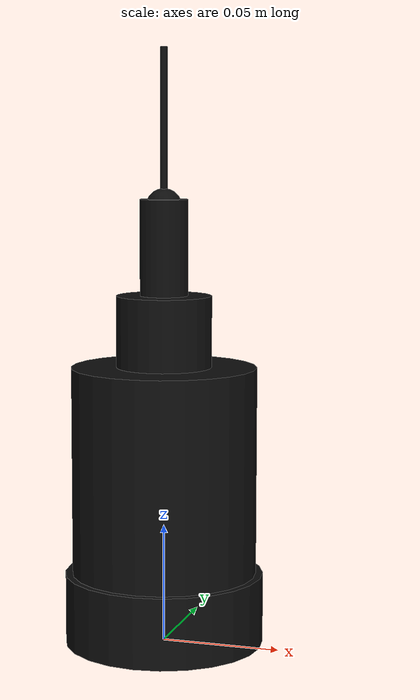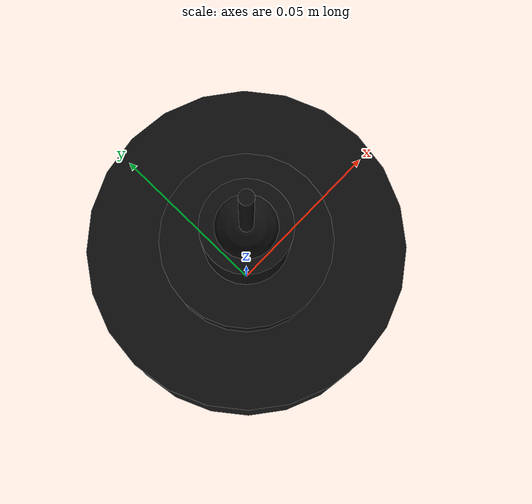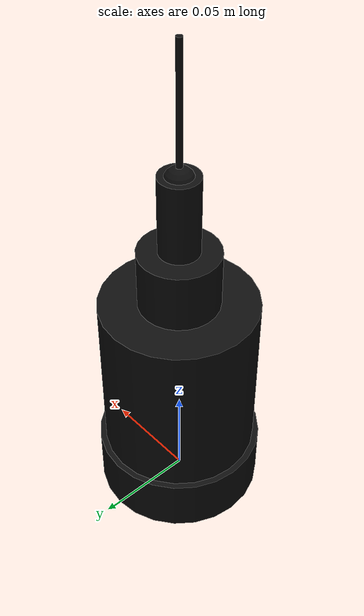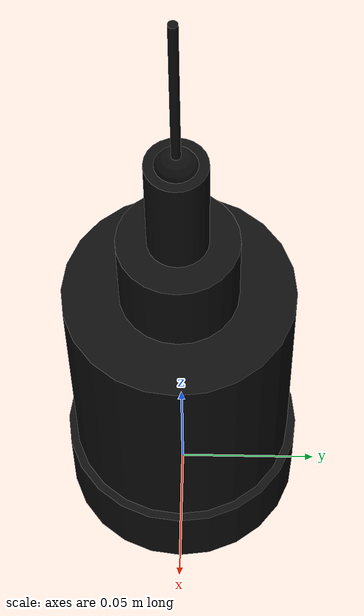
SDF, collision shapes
<?xml version="1.0" ?>
<sdf version="1.9">
  <model name="arc_sensor">

    <static>true</static>

    <link name="sensor_link">

      <inertial>
        <mass>0.35</mass>
        <pose>0 0 0.075 0 0 0</pose>
        <inertia>
          <ixx>0.0012</ixx>
          <iyy>0.0012</iyy>
          <izz>0.0004</izz>
          <ixy>0</ixy>
          <ixz>0</ixz>
          <iyz>0</iyz>
        </inertia>
      </inertial>

      <!-- VISUAL: high-fidelity revolved bellows body (dome + neck +    -->
      <!-- conical shoulder + ribbed housing + cylindrical base), built  -->
      <!-- from the dimensioned profile traced off the drawing.          -->
      <visual name="visual_body">
        <pose>0 0 0 0 0 0</pose>
        <geometry>
          <mesh>
            <uri>meshes/sensor_body.obj</uri>
            <scale>1 1 1</scale>
          </mesh>
        </geometry>
        <material>
          <ambient>0.02 0.02 0.02 1</ambient>
          <diffuse>0.05 0.05 0.05 1</diffuse>
          <specular>0.15 0.15 0.15 1</specular>
          <emissive>0 0 0 1</emissive>
        </material>
      </visual>

      <!-- Flexible whip antenna above the dome, drawn as a zig-zag
           (spring/whip) symbol. Modeled as a thin cylinder for
           collision/visual simplicity. -->
      <visual name="visual_whip_antenna">
        <pose>0 0 0.220 0 0 0</pose>
        <geometry>
          <cylinder>
            <radius>0.0015</radius>
            <length>0.060</length>
          </cylinder>
        </geometry>
        <material>
          <ambient>0.3 0.3 0.3 1</ambient>
          <diffuse>0.4 0.4 0.4 1</diffuse>
          <specular>0.5 0.5 0.5 1</specular>
        </material>
      </visual>

      <visual name="visual_slot_left">
        <pose>-0.018 0.0415 0.018 0 0 0</pose>
        <geometry>
          <box>
            <size>0.006 0.002 0.022</size>
          </box>
        </geometry>
        <material>
          <ambient>0.01 0.01 0.01 1</ambient>
          <diffuse>0.01 0.01 0.01 1</diffuse>
        </material>
      </visual>

      <visual name="visual_slot_right">
        <pose>0.018 0.0415 0.018 0 0 0</pose>
        <geometry>
          <box>
            <size>0.006 0.002 0.022</size>
          </box>
        </geometry>
        <material>
          <ambient>0.01 0.01 0.01 1</ambient>
          <diffuse>0.01 0.01 0.01 1</diffuse>
        </material>
      </visual>

      <!-- COLLISION: simplified compound primitives approximating the   -->
      <!-- visual envelope (cylindrical base + tapered bellows body as a -->
      <!-- conical frustum + dome cap + thin antenna stalk), for         -->
      <!-- efficient physics-engine collision checking.                  -->

      <!-- Base cylinder (the part planted/buried in the ground): Ø84mm -->
      <collision name="collision_base">
        <pose>0 0 0.015 0 0 0</pose>
        <geometry>
          <cylinder>
            <radius>0.042</radius>
            <length>0.030</length>
          </cylinder>
        </geometry>
        <surface>
          <friction>
            <ode>
              <mu>0.8</mu>
              <mu2>0.8</mu2>
            </ode>
          </friction>
        </surface>
      </collision>

      <!-- Ribbed bellows housing, approximated as a tapered cylinder
           (cone frustum) from the base up to the shoulder collar -->
      <collision name="collision_bellows">
        <pose>0 0 0.074 0 0 0</pose>
        <geometry>
          <cylinder>
            <radius>0.039</radius>
            <length>0.088</length>
          </cylinder>
        </geometry>
      </collision>

      <!-- Conical shoulder collar -->
      <collision name="collision_shoulder">
        <pose>0 0 0.133 0 0 0</pose>
        <geometry>
          <cylinder>
            <radius>0.020</radius>
            <length>0.030</length>
          </cylinder>
        </geometry>
      </collision>

      <!-- Neck + antenna stalk, Ø20mm -->
      <collision name="collision_stalk">
        <pose>0 0 0.168 0 0 0</pose>
        <geometry>
          <cylinder>
            <radius>0.010</radius>
            <length>0.040</length>
          </cylinder>
        </geometry>
      </collision>

      <!-- Dome cap -->
      <collision name="collision_dome">
        <pose>0 0 0.185 0 0 0</pose>
        <geometry>
          <sphere>
            <radius>0.0075</radius>
          </sphere>
        </geometry>
      </collision>

      <!-- Whip antenna -->
      <collision name="collision_whip">
        <pose>0 0 0.220 0 0 0</pose>
        <geometry>
          <cylinder>
            <radius>0.0015</radius>
            <length>0.060</length>
          </cylinder>
        </geometry>
      </collision>

    </link>

  </model>
</sdf>
